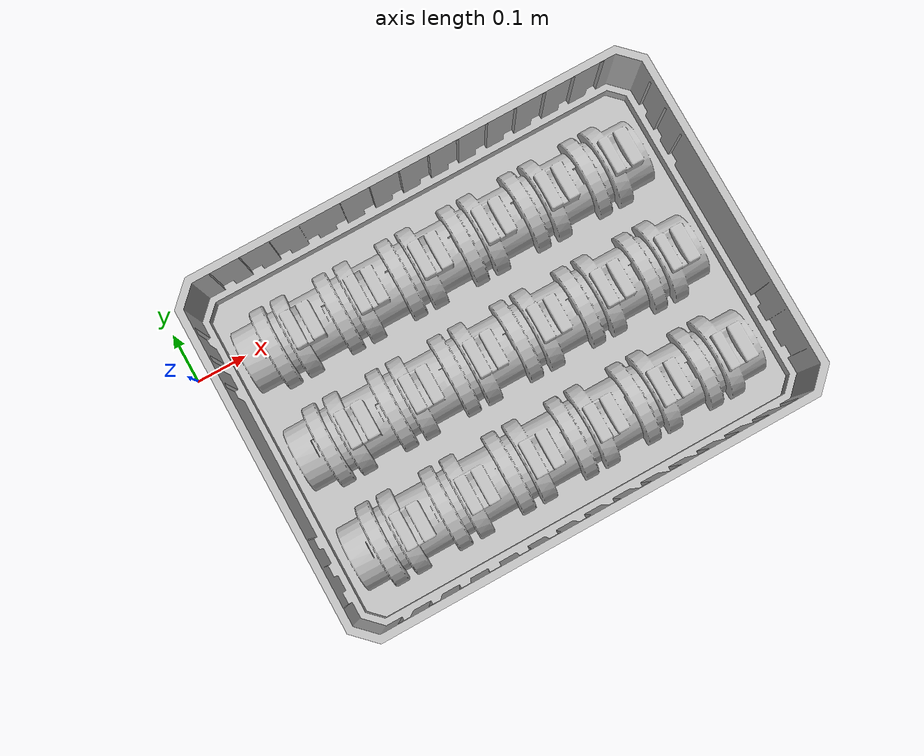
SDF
<?xml version="1.0" ?>
<sdf version="1.5">
  <model name="pallet_single">
    <static>true</static>
    <link name="link">
      <pose>0 0 0 0 0 0</pose>
      <collision name="collision">
        <geometry>
          <mesh>
            <uri>model://pallet_single/meshes/pallet_single.dae</uri>
            <scale>0.2 0.2 0.2</scale>
          </mesh>
        </geometry>
      </collision>
      <visual name="visual">
        <geometry>
          <mesh>
            <uri>model://pallet_single/meshes/pallet_single.dae</uri>
            <scale>0.2 0.2 0.2</scale>
          </mesh>
        </geometry>
      </visual>
    </link>
  </model>
</sdf>
